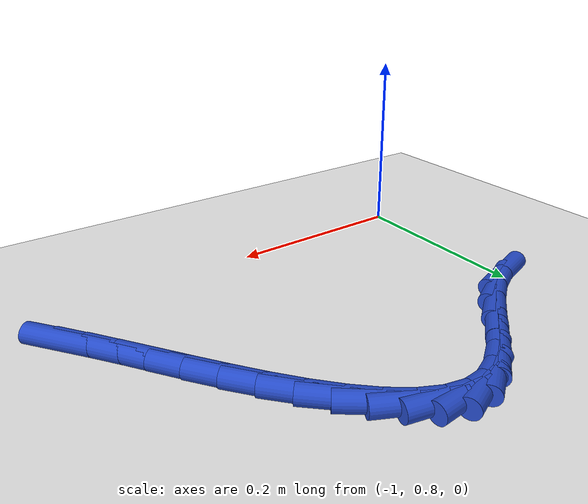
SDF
<sdf version="1.6">
 <world name="default">
  <model name="ground_plane">
   <static>1</static>
   <link name="link">
    <collision name="collision">
     <geometry><plane><normal>0 0 1</normal><size>100 100</size></plane></geometry>
     <surface><friction><ode><mu>100</mu><mu2>50</mu2></ode></friction></surface>
    </collision>
    <visual name="visual">
     <cast_shadows>0</cast_shadows>
     <geometry><plane><normal>0 0 1</normal><size>100 100</size></plane></geometry>
     <material>
      <script><uri>file://media/materials/scripts/gazebo.material</uri><name>Gazebo/WhiteGlow</name></script>
     </material>
    </visual>
   </link>
  </model>
  <model name="line">
   <link name="link_41">
    <pose>-0.5813969014039301 0.8615027221756857 0.01 0 1.57 -0.9134660706380294</pose>
    <collision name="collision">
     <geometry><cylinder><radius>0.01</radius><length>0.08</length></cylinder></geometry>
    </collision>
    <visual name="visual">
     <material>
      <script><name>Gazebo/Blue</name><uri>file://media/materials/scripts/gazebo.material</uri></script>
     </material>
     <geometry><cylinder><radius>0.01</radius><length>0.08</length></cylinder></geometry>
    </visual>
   </link>
   <link name="link_42">
    <pose>-0.5993454401955556 0.884757067393348 0.01 0 1.57 -0.9322609290077131</pose>
    <collision name="collision">
     <geometry><cylinder><radius>0.01</radius><length>0.08</length></cylinder></geometry>
    </collision>
    <visual name="visual">
     <material>
      <script><name>Gazebo/Blue</name><uri>file://media/materials/scripts/gazebo.material</uri></script>
     </material>
     <geometry><cylinder><radius>0.01</radius><length>0.08</length></cylinder></geometry>
    </visual>
   </link>
   <link name="link_43">
    <pose>-0.6176080779242967 0.9093608403990776 0.01 0 1.57 -0.9467397063344808</pose>
    <collision name="collision">
     <geometry><cylinder><radius>0.01</radius><length>0.08</length></cylinder></geometry>
    </collision>
    <visual name="visual">
     <material>
      <script><name>Gazebo/Blue</name><uri>file://media/materials/scripts/gazebo.material</uri></script>
     </material>
     <geometry><cylinder><radius>0.01</radius><length>0.08</length></cylinder></geometry>
    </visual>
   </link>
   <link name="link_44">
    <pose>-0.636288941984302 0.9353046483178902 0.01 0 1.57 -0.9502564664584233</pose>
    <collision name="collision">
     <geometry><cylinder><radius>0.01</radius><length>0.08</length></cylinder></geometry>
    </collision>
    <visual name="visual">
     <material>
      <script><name>Gazebo/Blue</name><uri>file://media/materials/scripts/gazebo.material</uri></script>
     </material>
     <geometry><cylinder><radius>0.01</radius><length>0.08</length></cylinder></geometry>
    </visual>
   </link>
   <link name="link_45">
    <pose>-0.6553808357144055 0.9620168965707229 0.01 0 1.57 -0.9411535458029279</pose>
    <collision name="collision">
     <geometry><cylinder><radius>0.01</radius><length>0.08</length></cylinder></geometry>
    </collision>
    <visual name="visual">
     <material>
      <script><name>Gazebo/Blue</name><uri>file://media/materials/scripts/gazebo.material</uri></script>
     </material>
     <geometry><cylinder><radius>0.01</radius><length>0.08</length></cylinder></geometry>
    </visual>
   </link>
   <link name="link_46">
    <pose>-0.6748357425875617 0.9887198446732742 0.01 0 1.57 -0.9191186451030166</pose>
    <collision name="collision">
     <geometry><cylinder><radius>0.01</radius><length>0.08</length></cylinder></geometry>
    </collision>
    <visual name="visual">
     <material>
      <script><name>Gazebo/Blue</name><uri>file://media/materials/scripts/gazebo.material</uri></script>
     </material>
     <geometry><cylinder><radius>0.01</radius><length>0.08</length></cylinder></geometry>
    </visual>
   </link>
   <link name="link_47">
    <pose>-0.6946055842129266 1.0146354397205957 0.01 0 1.57 -0.8822733708095486</pose>
    <collision name="collision">
     <geometry><cylinder><radius>0.01</radius><length>0.08</length></cylinder></geometry>
    </collision>
    <visual name="visual">
     <material>
      <script><name>Gazebo/Blue</name><uri>file://media/materials/scripts/gazebo.material</uri></script>
     </material>
     <geometry><cylinder><radius>0.01</radius><length>0.08</length></cylinder></geometry>
    </visual>
   </link>
   <link name="link_48">
    <pose>-0.7146422821996548 1.0389856288077375 0.01 0 1.57 -0.826812303792043</pose>
    <collision name="collision">
     <geometry><cylinder><radius>0.01</radius><length>0.08</length></cylinder></geometry>
    </collision>
    <visual name="visual">
     <material>
      <script><name>Gazebo/Blue</name><uri>file://media/materials/scripts/gazebo.material</uri></script>
     </material>
     <geometry><cylinder><radius>0.01</radius><length>0.08</length></cylinder></geometry>
    </visual>
   </link>
   <link name="link_49">
    <pose>-0.7348977581569021 1.060992359029751 0.01 0 1.57 -0.7462194824212696</pose>
    <collision name="collision">
     <geometry><cylinder><radius>0.01</radius><length>0.08</length></cylinder></geometry>
    </collision>
    <visual name="visual">
     <material>
      <script><name>Gazebo/Blue</name><uri>file://media/materials/scripts/gazebo.material</uri></script>
     </material>
     <geometry><cylinder><radius>0.01</radius><length>0.08</length></cylinder></geometry>
    </visual>
   </link>
   <link name="link_50">
    <pose>-0.7553239336938238 1.0798775774816864 0.01 0 1.57 -0.6301024117576631</pose>
    <collision name="collision">
     <geometry><cylinder><radius>0.01</radius><length>0.08</length></cylinder></geometry>
    </collision>
    <visual name="visual">
     <material>
      <script><name>Gazebo/Blue</name><uri>file://media/materials/scripts/gazebo.material</uri></script>
     </material>
     <geometry><cylinder><radius>0.01</radius><length>0.08</length></cylinder></geometry>
    </visual>
   </link>
   <link name="link_51">
    <pose>-0.7758727304195749 1.094863231258595 0.01 0 1.57 -0.46350664944377673</pose>
    <collision name="collision">
     <geometry><cylinder><radius>0.01</radius><length>0.08</length></cylinder></geometry>
    </collision>
    <visual name="visual">
     <material>
      <script><name>Gazebo/Blue</name><uri>file://media/materials/scripts/gazebo.material</uri></script>
     </material>
     <geometry><cylinder><radius>0.01</radius><length>0.08</length></cylinder></geometry>
    </visual>
   </link>
   <link name="link_52">
    <pose>-0.7964960699433113 1.1051712674555274 0.01 0 1.57 -0.23079643906061223</pose>
    <collision name="collision">
     <geometry><cylinder><radius>0.01</radius><length>0.08</length></cylinder></geometry>
    </collision>
    <visual name="visual">
     <material>
      <script><name>Gazebo/Blue</name><uri>file://media/materials/scripts/gazebo.material</uri></script>
     </material>
     <geometry><cylinder><radius>0.01</radius><length>0.08</length></cylinder></geometry>
    </visual>
   </link>
   <link name="link_53">
    <pose>-0.8171458738741879 1.1100236331675346 0.01 0 1.57 0.06686473382247758</pose>
    <collision name="collision">
     <geometry><cylinder><radius>0.01</radius><length>0.08</length></cylinder></geometry>
    </collision>
    <visual name="visual">
     <material>
      <script><name>Gazebo/Blue</name><uri>file://media/materials/scripts/gazebo.material</uri></script>
     </material>
     <geometry><cylinder><radius>0.01</radius><length>0.08</length></cylinder></geometry>
    </visual>
   </link>
   <link name="link_54">
    <pose>-0.8377740638213603 1.1086422754896672 0.01 0 1.57 0.37661075256918597</pose>
    <collision name="collision">
     <geometry><cylinder><radius>0.01</radius><length>0.08</length></cylinder></geometry>
    </collision>
    <visual name="visual">
     <material>
      <script><name>Gazebo/Blue</name><uri>file://media/materials/scripts/gazebo.material</uri></script>
     </material>
     <geometry><cylinder><radius>0.01</radius><length>0.08</length></cylinder></geometry>
    </visual>
   </link>
   <link name="link_55">
    <pose>-0.8583561243334903 1.1005023158253229 0.01 0 1.57 0.5843828397875431</pose>
    <collision name="collision">
     <geometry><cylinder><radius>0.01</radius><length>0.08</length></cylinder></geometry>
    </collision>
    <visual name="visual">
     <material>
      <script><name>Gazebo/Blue</name><uri>file://media/materials/scripts/gazebo.material</uri></script>
     </material>
     <geometry><cylinder><radius>0.01</radius><length>0.08</length></cylinder></geometry>
    </visual>
   </link>
   <link name="link_56">
    <pose>-0.8790302738250624 1.0868273855171218 0.01 0 1.57 0.6882450072943948</pose>
    <collision name="collision">
     <geometry><cylinder><radius>0.01</radius><length>0.08</length></cylinder></geometry>
    </collision>
    <visual name="visual">
     <material>
      <script><name>Gazebo/Blue</name><uri>file://media/materials/scripts/gazebo.material</uri></script>
     </material>
     <geometry><cylinder><radius>0.01</radius><length>0.08</length></cylinder></geometry>
    </visual>
   </link>
   <link name="link_57">
    <pose>-0.9000034309787839 1.0695792726595492 0.01 0 1.57 0.7204752794274424</pose>
    <collision name="collision">
     <geometry><cylinder><radius>0.01</radius><length>0.08</length></cylinder></geometry>
    </collision>
    <visual name="visual">
     <material>
      <script><name>Gazebo/Blue</name><uri>file://media/materials/scripts/gazebo.material</uri></script>
     </material>
     <geometry><cylinder><radius>0.01</radius><length>0.08</length></cylinder></geometry>
    </visual>
   </link>
   <link name="link_58">
    <pose>-0.921482757422946 1.0507223756996864 0.01 0 1.57 0.6949350696536066</pose>
    <collision name="collision">
     <geometry><cylinder><radius>0.01</radius><length>0.08</length></cylinder></geometry>
    </collision>
    <visual name="visual">
     <material>
      <script><name>Gazebo/Blue</name><uri>file://media/materials/scripts/gazebo.material</uri></script>
     </material>
     <geometry><cylinder><radius>0.01</radius><length>0.08</length></cylinder></geometry>
    </visual>
   </link>
   <link name="link_59">
    <pose>-0.9436754147858407 1.0322210930846158 0.01 0 1.57 0.6107859203684222</pose>
    <collision name="collision">
     <geometry><cylinder><radius>0.01</radius><length>0.08</length></cylinder></geometry>
    </collision>
    <visual name="visual">
     <material>
      <script><name>Gazebo/Blue</name><uri>file://media/materials/scripts/gazebo.material</uri></script>
     </material>
     <geometry><cylinder><radius>0.01</radius><length>0.08</length></cylinder></geometry>
    </visual>
   </link>
   <link name="link_60">
    <pose>-0.96678856469576 1.0160398232614203 0.01 0 1.57 0.4603137982510625</pose>
    <collision name="collision">
     <geometry><cylinder><radius>0.01</radius><length>0.08</length></cylinder></geometry>
    </collision>
    <visual name="visual">
     <material>
      <script><name>Gazebo/Blue</name><uri>file://media/materials/scripts/gazebo.material</uri></script>
     </material>
     <geometry><cylinder><radius>0.01</radius><length>0.08</length></cylinder></geometry>
    </visual>
   </link>
   <link name="link_61">
    <pose>-0.9910126477394421 1.0040285622569287 0.01 0 1.57 0.2916671352981252</pose>
    <collision name="collision">
     <geometry><cylinder><radius>0.01</radius><length>0.08</length></cylinder></geometry>
    </collision>
    <visual name="visual">
     <material>
      <script><name>Gazebo/Blue</name><uri>file://media/materials/scripts/gazebo.material</uri></script>
     </material>
     <geometry><cylinder><radius>0.01</radius><length>0.08</length></cylinder></geometry>
    </visual>
   </link>
  </model>
 </world>
</sdf>
